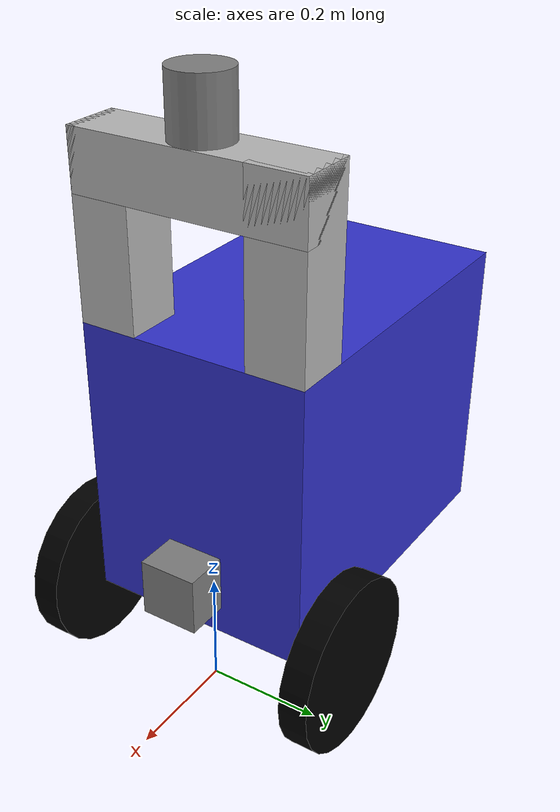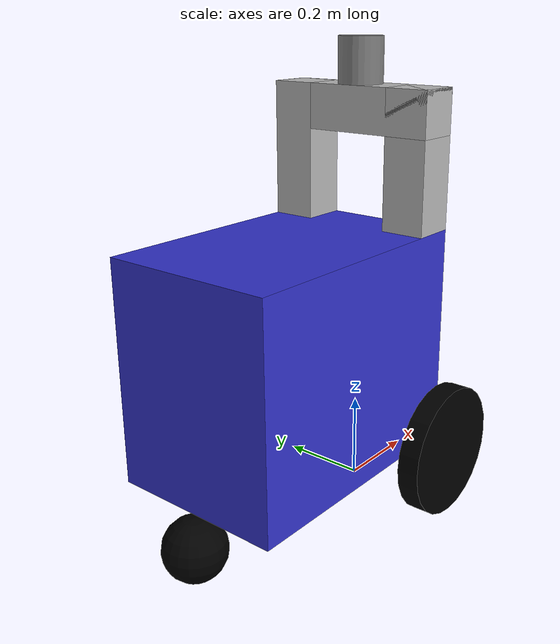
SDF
<?xml version="1.0"?>
<sdf version="1.6">
  <model name="icart_middle_robot">
    <static>false</static>
    <!-- モデル原点は world 原点に一致 -->
    <pose>0 0 0 0 0 0</pose>

    <!--                    Base Link                          -->
    <!-- base_link フレーム原点:
         - 左右駆動輪の車軸中心の中点
         - 高さ z = 0.15 (車輪半径)
    -->
    <link name="base_link">
      <pose>0 0 0.15 0 0 0</pose>

      <inertial>
        <!-- 車体の質量。柱やセンサより十分重い前提 -->
        <mass>50.0</mass>
        <!-- 車体全体の重心を x=-0.1 m 後方へオフセットして、
             前方に倒れにくくする -->
        <pose>-0.1 0 0 0 0 0</pose>
        <inertia>
          <ixx>5.0</ixx>
          <iyy>5.0</iyy>
          <izz>5.0</izz>
          <ixy>0</ixy>
          <ixz>0</ixz>
          <iyz>0</iyz>
        </inertia>
      </inertial>

      <collision name="collision">
        <pose>-0.25 0 0.25 0 0 0</pose>
        <geometry>
          <box>
            <size>0.6 0.4 0.5</size>
          </box>
        </geometry>
      </collision>

      <visual name="visual">
        <pose>-0.25 0 0.25 0 0 0</pose>
        <geometry>
          <box>
            <size>0.6 0.4 0.5</size>
          </box>
        </geometry>
        <material>
          <ambient>0.2 0.2 0.8 1</ambient>
          <diffuse>0.2 0.2 0.8 1</diffuse>
        </material>
      </visual>
    </link>

    <!--              UTM-30 Target Box (10cm)                 -->
    <!-- UTM-30LX 原点:
         - base_link 原点から前方 +0.075 m (x=0.075)
         - 地面から高さ 0.25 m
         → (x,y,z) = (0.075, 0, 0.25)
       立方体はこの点を中心に配置し、mid360 と同じ色にする。
    -->
    <link name="utm30_target_box">
      <pose>0.075 0 0.25 0 0 0</pose>
      <inertial>
        <mass>0.1</mass>
        <inertia>
          <ixx>1e-4</ixx>
          <iyy>1e-4</iyy>
          <izz>1e-4</izz>
        </inertia>
      </inertial>
      <visual name="visual">
        <geometry>
          <box><size>0.1 0.1 0.1</size></box>
        </geometry>
        <material>
          <!-- mid360 と同じグレー系 -->
          <ambient>0.5 0.5 0.5 1</ambient>
          <diffuse>0.5 0.5 0.5 1</diffuse>
        </material>
      </visual>
    </link>

    <joint name="utm30_target_joint" type="fixed">
      <parent>base_link</parent>
      <child>utm30_target_box</child>
    </joint>

    <!--                    Left Wheel                         -->
    <!-- Wheel 条件:
         - 半径: 0.15 m
         - 幅(length): 0.05 m
         - center (base_link 相対): x=0, y=+0.25, z=0.15
         - 色: 黒
    -->
    <link name="left_wheel_link">
      <pose>0 0.25 0.15 0 0 0</pose>

      <inertial>
        <mass>1.0</mass>
        <inertia>
          <ixx>0.01</ixx>
          <iyy>0.01</iyy>
          <izz>0.005</izz>
        </inertia>
      </inertial>

      <collision name="collision">
        <!-- Y 軸回転になるようロール 90deg -->
        <pose>0 0 0 1.5708 0 0</pose>
        <geometry>
          <cylinder>
            <radius>0.15</radius>
            <length>0.05</length>
          </cylinder>
        </geometry>
      </collision>

      <visual name="visual">
        <pose>0 0 0 1.5708 0 0</pose>
        <geometry>
          <cylinder>
            <radius>0.15</radius>
            <length>0.05</length>
          </cylinder>
        </geometry>
        <material>
          <ambient>0 0 0 1</ambient>
          <diffuse>0 0 0 1</diffuse>
        </material>
      </visual>
    </link>

    <joint name="left_wheel_joint" type="revolute">
      <parent>base_link</parent>
      <child>left_wheel_link</child>
      <pose>0 0 0 0 0 0</pose>
      <axis>
        <xyz>0 1 0</xyz>
        <limit>
          <lower>-1e16</lower>
          <upper>1e16</upper>
        </limit>
      </axis>
    </joint>

    <!--                    Right Wheel                        -->
    <!-- center (base_link 相対): x=0, y=-0.25, z=0.15 -->
    <link name="right_wheel_link">
      <pose>0 -0.25 0.15 0 0 0</pose>

      <inertial>
        <mass>1.0</mass>
        <inertia>
          <ixx>0.01</ixx>
          <iyy>0.01</iyy>
          <izz>0.005</izz>
        </inertia>
      </inertial>

      <collision name="collision">
        <pose>0 0 0 1.5708 0 0</pose>
        <geometry>
          <cylinder>
            <radius>0.15</radius>
            <length>0.05</length>
          </cylinder>
        </geometry>
      </collision>

      <visual name="visual">
        <pose>0 0 0 1.5708 0 0</pose>
        <geometry>
          <cylinder>
            <radius>0.15</radius>
            <length>0.05</length>
          </cylinder>
        </geometry>
        <material>
          <ambient>0 0 0 1</ambient>
          <diffuse>0 0 0 1</diffuse>
        </material>
      </visual>
    </link>

    <joint name="right_wheel_joint" type="revolute">
      <parent>base_link</parent>
      <child>right_wheel_link</child>
      <pose>0 0 0 0 0 0</pose>
      <axis>
        <xyz>0 1 0</xyz>
        <limit>
          <lower>-1e16</lower>
          <upper>1e16</upper>
        </limit>
      </axis>
    </joint>

    <!--                    Rear Caster                        -->
    <!-- キャスタの球の中心が、車体の後端 (x=-0.55) に来るように:
         - 車体後端: 車体中心 x=-0.25, サイズ 0.6 → 後端 = -0.25 - 0.3 = -0.55
         → center x = -0.55
    -->
    <link name="rear_caster_link">
      <!-- 半径 0.07 → 中心高さ 0.07 で地面 z=0 に接触 -->
      <pose>-0.55 0 0.07 0 0 0</pose>

      <inertial>
        <mass>5.0</mass>
        <inertia>
          <ixx>0.01</ixx>
          <iyy>0.01</iyy>
          <izz>0.01</izz>
        </inertia>
      </inertial>

      <collision name="collision">
        <geometry>
          <sphere>
            <radius>0.07</radius>
          </sphere>
        </geometry>
      </collision>

      <visual name="visual">
        <geometry>
          <sphere>
            <radius>0.07</radius>
          </sphere>
        </geometry>
        <material>
          <ambient>0 0 0 1</ambient>
          <diffuse>0 0 0 1</diffuse>
        </material>
      </visual>
    </link>

    <joint name="rear_caster_joint" type="ball">
      <parent>base_link</parent>
      <child>rear_caster_link</child>
      <pose>0 0 0 0 0 0</pose>
    </joint>

    <!--                        UTM-30LX                       -->
    <!-- UTM-30LX 本体。
         - XY中心: 駆動輪車軸中心から前方にシフト → (0.075, 0)
         - 高さ: z = 0.25
         - 視野: 約 270deg (±135deg)
         - range: 0.2 ～ 30 m
         - 出力: /scan (sensor_msgs/LaserScan)
    -->
    <link name="laser">
      <pose>0.075 0 0.25 0 0 0</pose>

      <inertial>
        <mass>2.0</mass>
        <inertia>
          <ixx>0.01</ixx>
          <iyy>0.01</iyy>
          <izz>0.01</izz>
        </inertia>
      </inertial>

      <sensor name="utm30" type="ray">
        <pose>0 0 0 0 0 0</pose>
        <update_rate>40</update_rate>

        <ray>
          <scan>
            <horizontal>
              <samples>1080</samples>
              <min_angle>-2.35619</min_angle>
              <max_angle>2.35619</max_angle>
            </horizontal>
          </scan>
          <range>
            <min>0.2</min>
            <max>30</max>
          </range>
        </ray>

        <plugin name="utm30_plugin" filename="libgazebo_ros_ray_sensor.so">
          <ros>
            <remapping>~/out:=/scan</remapping>
          </ros>
          <output_type>sensor_msgs/LaserScan</output_type>
        </plugin>
      </sensor>
    </link>

    <joint name="utm30_joint" type="fixed">
      <parent>base_link</parent>
      <child>laser</child>
    </joint>

    <!--                    Mid360 支柱                       -->
    <link name="pillar_left">
      <pose>0 0.15 0.8025 0 0 0</pose>
      <inertial>
        <mass>1.0</mass>
        <inertia>
          <ixx>0.005</ixx>
          <iyy>0.005</iyy>
          <izz>0.005</izz>
        </inertia>
      </inertial>
      <visual name="visual">
        <geometry>
          <box><size>0.1 0.1 0.305</size></box>
        </geometry>
      </visual>
    </link>

    <joint name="pillar_left_joint" type="fixed">
      <parent>base_link</parent>
      <child>pillar_left</child>
    </joint>

    <link name="pillar_right">
      <pose>0 -0.15 0.8025 0 0 0</pose>
      <inertial>
        <mass>1.0</mass>
        <inertia>
          <ixx>0.005</ixx>
          <iyy>0.005</iyy>
          <izz>0.005</izz>
        </inertia>
      </inertial>
      <visual name="visual">
        <geometry>
          <box><size>0.1 0.1 0.305</size></box>
        </geometry>
      </visual>
    </link>

    <joint name="pillar_right_joint" type="fixed">
      <parent>base_link</parent>
      <child>pillar_right</child>
    </joint>

    <!--                    Mid360 横梁                       -->
    <link name="pillar_beam">
      <pose>0 0 0.905 0 0 0</pose>
      <inertial>
        <mass>1.0</mass>
        <inertia>
          <ixx>0.005</ixx>
          <iyy>0.005</iyy>
          <izz>0.005</izz>
        </inertia>
      </inertial>
      <visual name="visual">
        <geometry>
          <box><size>0.1 0.4 0.1</size></box>
        </geometry>
      </visual>
    </link>

    <joint name="pillar_beam_joint" type="fixed">
      <parent>pillar_left</parent>
      <child>pillar_beam</child>
    </joint>

    <!--                    Mid360 ダミー                      -->
    <!-- Mid360 円柱条件:
         - XY中心: 駆動輪車軸中心の真上 → (0, 0)
         - 高さ: z = 1.005
    -->
    <link name="mid360_dummy">
      <pose>0 0 1.005 0 0 0</pose>
      <inertial>
        <mass>2.0</mass>
        <inertia>
          <ixx>0.01</ixx>
          <iyy>0.01</iyy>
          <izz>0.01</izz>
        </inertia>
      </inertial>
      <visual name="visual">
        <geometry>
          <cylinder>
            <radius>0.05</radius>
            <length>0.1</length>
          </cylinder>
        </geometry>
        <material>
          <!-- UTM立方体と同じグレー系 -->
          <ambient>0.5 0.5 0.5 1</ambient>
          <diffuse>0.5 0.5 0.5 1</diffuse>
        </material>
      </visual>
    </link>

    <joint name="mid360_dummy_joint" type="fixed">
      <parent>base_link</parent>
      <child>mid360_dummy</child>
    </joint>

    <!--                    Mid360 センサ                      -->
    <link name="mid360_frame">
      <pose>0 0 1.005 0 0 0</pose>
      <inertial>
        <mass>2.0</mass>
        <inertia>
          <ixx>0.01</ixx>
          <iyy>0.01</iyy>
          <izz>0.01</izz>
        </inertia>
      </inertial>

      <sensor name="mid360" type="ray">
        <update_rate>10</update_rate>
        <ray>
          <scan>
            <horizontal>
              <samples>900</samples>
              <min_angle>-3.14159</min_angle>
              <max_angle>3.14159</max_angle>
            </horizontal>
            <vertical>
              <samples>24</samples>
              <min_angle>-0.122</min_angle>
              <max_angle>0.907</max_angle>
            </vertical>
          </scan>
          <range>
            <min>0.2</min>
            <max>40</max>
          </range>
        </ray>

        <plugin name="mid360_plugin" filename="libgazebo_ros_ray_sensor.so">
          <ros>
            <remapping>~/out:=/mid360/livox/lidar</remapping>
          </ros>
          <output_type>sensor_msgs/PointCloud2</output_type>
        </plugin>
      </sensor>
    </link>

    <joint name="mid360_joint" type="fixed">
      <parent>base_link</parent>
      <child>mid360_frame</child>
    </joint>

    <!--                Diff Drive Plugin (ROS2)               -->
    <!-- 差動二輪の条件:
         - wheel_separation: 0.5 m (y=±0.25)
         - wheel_diameter: 0.3 m
         - cmd_vel: /cmd_vel
         - odom: /ypspur_ros/odom
         - TF と odom を publish
    -->
    <plugin name="diff_drive" filename="libgazebo_ros_diff_drive.so">
      <ros>
        <remapping>cmd_vel:=/cmd_vel</remapping>
        <remapping>odom:=/ypspur_ros/odom</remapping>
      </ros>

      <left_joint>left_wheel_joint</left_joint>
      <right_joint>right_wheel_joint</right_joint>

      <wheel_separation>0.5</wheel_separation>
      <wheel_diameter>0.3</wheel_diameter>

      <publish_odom>true</publish_odom>
      <publish_tf>true</publish_tf>
    </plugin>

  </model>
</sdf>
